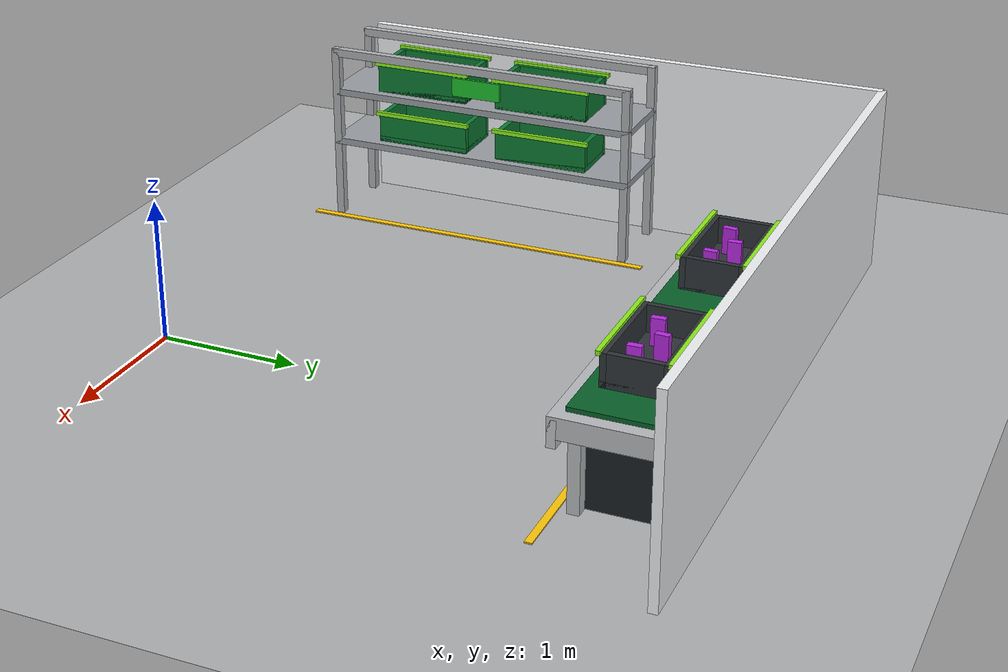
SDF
<?xml version="1.0" encoding="utf-8"?>
<sdf version="1.10">
  <world name="l_sorting_workcell">
    <gravity>0 0 -9.8</gravity>
    <physics name="100hz" type="ignored">
      <max_step_size>0.01</max_step_size>
      <real_time_factor>1</real_time_factor>
      <real_time_update_rate>100</real_time_update_rate>
    </physics>

    <plugin name="gz::sim::systems::Physics" filename="gz-sim-physics-system"/>
    <plugin name="gz::sim::systems::UserCommands" filename="gz-sim-user-commands-system"/>
    <plugin name="gz::sim::systems::SceneBroadcaster" filename="gz-sim-scene-broadcaster-system"/>
    <plugin name="gz::sim::systems::Contact" filename="gz-sim-contact-system"/>
    <plugin name="gz::sim::systems::Sensors" filename="gz-sim-sensors-system">
      <render_engine>ogre2</render_engine>
    </plugin>

    <scene>
      <ambient>0.55 0.55 0.55 1</ambient>
      <background>0.72 0.75 0.78 1</background>
      <shadows>true</shadows>
      <grid>false</grid>
    </scene>

    <gui>
      <camera name="user_camera">
        <pose>5.8 -4.8 5.2 0 0.50 2.34</pose>
      </camera>
    </gui>

    <light name="sun" type="directional">
      <pose>0 0 8 0 0 0</pose>
      <cast_shadows>true</cast_shadows>
      <intensity>1.1</intensity>
      <direction>-0.45 0.25 -0.86</direction>
      <diffuse>0.90 0.90 0.88 1</diffuse>
      <specular>0.20 0.20 0.20 1</specular>
    </light>
    <light name="workcell_fill_light" type="point">
      <pose>-0.5 1.5 5.0 0 0 0</pose>
      <cast_shadows>false</cast_shadows>
      <intensity>1.2</intensity>
      <diffuse>0.95 0.97 1.0 1</diffuse>
      <specular>0.15 0.15 0.15 1</specular>
      <attenuation><range>14</range><constant>0.7</constant><linear>0.03</linear><quadratic>0.01</quadratic></attenuation>
    </light>

    <model name="l_workcell_floor">
      <static>true</static>
      <link name="floor">
        <collision name="collision">
          <geometry><plane><normal>0 0 1</normal><size>14 14</size></plane></geometry>
          <surface><friction><ode><mu>1.0</mu><mu2>1.0</mu2></ode></friction></surface>
        </collision>
        <visual name="visual">
          <geometry><plane><normal>0 0 1</normal><size>14 14</size></plane></geometry>
          <material><ambient>0.52 0.53 0.54 1</ambient><diffuse>0.68 0.69 0.70 1</diffuse><specular>0.08 0.08 0.08 1</specular></material>
        </visual>
      </link>
    </model>

    <model name="l_workcell_partition_walls">
      <static>true</static>
      <link name="partitions">
        <collision name="left_wall_collision"><pose>-3.10 2.10 0.675 0 0 0</pose><geometry><box><size>0.06 4.00 1.35</size></box></geometry></collision>
        <visual name="left_wall_visual"><pose>-3.10 2.10 0.675 0 0 0</pose><geometry><box><size>0.06 4.00 1.35</size></box></geometry><material><ambient>0.82 0.83 0.84 1</ambient><diffuse>0.94 0.95 0.96 1</diffuse></material></visual>
        <collision name="rear_wall_collision"><pose>-0.70 4.10 0.675 0 0 0</pose><geometry><box><size>4.80 0.06 1.35</size></box></geometry></collision>
        <visual name="rear_wall_visual"><pose>-0.70 4.10 0.675 0 0 0</pose><geometry><box><size>4.80 0.06 1.35</size></box></geometry><material><ambient>0.82 0.83 0.84 1</ambient><diffuse>0.94 0.95 0.96 1</diffuse></material></visual>
      </link>
    </model>

    <model name="l_workcell_floor_markings">
      <static>true</static>
      <link name="markings">
        <visual name="rack_clearance"><pose>-2.34 1.25 0.006 0 0 0</pose><geometry><box><size>0.05 2.70 0.01</size></box></geometry><material><ambient>0.85 0.64 0.02 1</ambient><diffuse>1.0 0.78 0.03 1</diffuse></material></visual>
        <visual name="conveyor_clearance"><pose>-0.25 3.24 0.006 0 0 0</pose><geometry><box><size>3.20 0.05 0.01</size></box></geometry><material><ambient>0.85 0.64 0.02 1</ambient><diffuse>1.0 0.78 0.03 1</diffuse></material></visual>
      </link>
    </model>

    <include>
      <uri>model://l_workcell_rack</uri>
      <name>empty_basket_deck</name>
      <pose>-2.70 1.25 0 0 0 1.57079632679</pose>
    </include>

    <include><uri>model://l_workcell_empty_basket</uri><name>empty_basket_lower_1</name><pose>-2.68 0.77 0.625 0 0 1.57079632679</pose></include>
    <include><uri>model://l_workcell_empty_basket</uri><name>empty_basket_lower_2</name><pose>-2.68 1.73 0.625 0 0 1.57079632679</pose></include>
    <include><uri>model://l_workcell_empty_basket</uri><name>empty_basket_upper_1</name><pose>-2.68 0.77 1.025 0 0 1.57079632679</pose></include>
    <include><uri>model://l_workcell_empty_basket</uri><name>empty_basket_upper_2</name><pose>-2.68 1.73 1.025 0 0 1.57079632679</pose></include>

    <include>
      <uri>model://l_workcell_conveyor</uri>
      <name>filled_basket_conveyor</name>
      <pose>-0.25 3.65 0 0 0 0</pose>
    </include>

    <include><uri>model://l_workcell_filled_basket</uri><name>filled_basket_1</name><pose>-0.95 3.65 0.77 0 0 0</pose></include>
    <include><uri>model://l_workcell_filled_basket</uri><name>filled_basket_2</name><pose>0.45 3.65 0.77 0 0 0</pose></include>

    <include><uri>model://l_workcell_item</uri><name>sorting_item_1</name><pose>-1.14 3.60 0.90 0 0 -0.08</pose></include>
    <include><uri>model://l_workcell_item</uri><name>sorting_item_2</name><pose>-0.95 3.69 0.90 0 0 0.06</pose></include>
    <include><uri>model://l_workcell_item</uri><name>sorting_item_3</name><pose>-0.76 3.59 0.90 0 0 -0.04</pose></include>
    <include><uri>model://l_workcell_item</uri><name>sorting_item_4</name><pose>0.26 3.60 0.90 0 0 0.07</pose></include>
    <include><uri>model://l_workcell_item</uri><name>sorting_item_5</name><pose>0.45 3.69 0.90 0 0 -0.05</pose></include>
    <include><uri>model://l_workcell_item</uri><name>sorting_item_6</name><pose>0.64 3.59 0.90 0 0 0.03</pose></include>
  </world>
</sdf>

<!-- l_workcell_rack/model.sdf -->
<sdf version="1.10">
  <model name="l_workcell_rack">
    <static>true</static>
    <link name="rack">
      <collision name="lower_deck_collision"><pose>0 0 0.60 0 0 0</pose><geometry><box><size>2.40 0.60 0.05</size></box></geometry></collision>
      <visual name="lower_deck_visual"><pose>0 0 0.60 0 0 0</pose><geometry><box><size>2.40 0.60 0.05</size></box></geometry><material><ambient>0.32 0.34 0.36 1</ambient><diffuse>0.60 0.62 0.64 1</diffuse><specular>0.35 0.35 0.35 1</specular></material></visual>

      <collision name="upper_deck_collision"><pose>0 0 1.00 0 0 0</pose><geometry><box><size>2.40 0.60 0.05</size></box></geometry></collision>
      <visual name="upper_deck_visual"><pose>0 0 1.00 0 0 0</pose><geometry><box><size>2.40 0.60 0.05</size></box></geometry><material><ambient>0.32 0.34 0.36 1</ambient><diffuse>0.60 0.62 0.64 1</diffuse><specular>0.35 0.35 0.35 1</specular></material></visual>

      <collision name="post_fl_collision"><pose>-1.17 -0.27 0.67 0 0 0</pose><geometry><box><size>0.06 0.06 1.34</size></box></geometry></collision>
      <visual name="post_fl_visual"><pose>-1.17 -0.27 0.67 0 0 0</pose><geometry><box><size>0.06 0.06 1.34</size></box></geometry><material><ambient>0.36 0.37 0.38 1</ambient><diffuse>0.68 0.69 0.70 1</diffuse></material></visual>
      <collision name="post_fr_collision"><pose>1.17 -0.27 0.67 0 0 0</pose><geometry><box><size>0.06 0.06 1.34</size></box></geometry></collision>
      <visual name="post_fr_visual"><pose>1.17 -0.27 0.67 0 0 0</pose><geometry><box><size>0.06 0.06 1.34</size></box></geometry><material><ambient>0.36 0.37 0.38 1</ambient><diffuse>0.68 0.69 0.70 1</diffuse></material></visual>
      <collision name="post_rl_collision"><pose>-1.17 0.27 0.67 0 0 0</pose><geometry><box><size>0.06 0.06 1.34</size></box></geometry></collision>
      <visual name="post_rl_visual"><pose>-1.17 0.27 0.67 0 0 0</pose><geometry><box><size>0.06 0.06 1.34</size></box></geometry><material><ambient>0.36 0.37 0.38 1</ambient><diffuse>0.68 0.69 0.70 1</diffuse></material></visual>
      <collision name="post_rr_collision"><pose>1.17 0.27 0.67 0 0 0</pose><geometry><box><size>0.06 0.06 1.34</size></box></geometry></collision>
      <visual name="post_rr_visual"><pose>1.17 0.27 0.67 0 0 0</pose><geometry><box><size>0.06 0.06 1.34</size></box></geometry><material><ambient>0.36 0.37 0.38 1</ambient><diffuse>0.68 0.69 0.70 1</diffuse></material></visual>

      <collision name="top_front_collision"><pose>0 -0.27 1.31 0 0 0</pose><geometry><box><size>2.40 0.06 0.06</size></box></geometry></collision>
      <visual name="top_front_visual"><pose>0 -0.27 1.31 0 0 0</pose><geometry><box><size>2.40 0.06 0.06</size></box></geometry><material><ambient>0.36 0.37 0.38 1</ambient><diffuse>0.68 0.69 0.70 1</diffuse></material></visual>
      <collision name="top_rear_collision"><pose>0 0.27 1.31 0 0 0</pose><geometry><box><size>2.40 0.06 0.06</size></box></geometry></collision>
      <visual name="top_rear_visual"><pose>0 0.27 1.31 0 0 0</pose><geometry><box><size>2.40 0.06 0.06</size></box></geometry><material><ambient>0.36 0.37 0.38 1</ambient><diffuse>0.68 0.69 0.70 1</diffuse></material></visual>

      <visual name="station_marker"><pose>0 -0.305 1.18 0 0 0</pose><geometry><box><size>0.38 0.02 0.14</size></box></geometry><material><ambient>0.08 0.48 0.12 1</ambient><diffuse>0.12 0.74 0.18 1</diffuse></material></visual>
    </link>
  </model>
</sdf>

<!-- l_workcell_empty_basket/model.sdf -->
<sdf version="1.10">
  <model name="l_workcell_empty_basket">
    <static>true</static>
    <link name="basket">
      <collision name="bottom_collision">
        <pose>0 0 0.02 0 0 0</pose>
        <geometry><box><size>0.72 0.42 0.04</size></box></geometry>
      </collision>
      <visual name="bottom_visual">
        <pose>0 0 0.02 0 0 0</pose>
        <geometry><box><size>0.72 0.42 0.04</size></box></geometry>
        <material><ambient>0.03 0.28 0.12 1</ambient><diffuse>0.05 0.48 0.20 1</diffuse></material>
      </visual>

      <collision name="front_wall_collision">
        <pose>0 -0.19 0.11 0 0 0</pose>
        <geometry><box><size>0.72 0.04 0.22</size></box></geometry>
      </collision>
      <visual name="front_wall_visual">
        <pose>0 -0.19 0.11 0 0 0</pose>
        <geometry><box><size>0.72 0.04 0.22</size></box></geometry>
        <material><ambient>0.03 0.28 0.12 1</ambient><diffuse>0.05 0.48 0.20 1</diffuse></material>
      </visual>

      <collision name="rear_wall_collision">
        <pose>0 0.19 0.11 0 0 0</pose>
        <geometry><box><size>0.72 0.04 0.22</size></box></geometry>
      </collision>
      <visual name="rear_wall_visual">
        <pose>0 0.19 0.11 0 0 0</pose>
        <geometry><box><size>0.72 0.04 0.22</size></box></geometry>
        <material><ambient>0.03 0.28 0.12 1</ambient><diffuse>0.05 0.48 0.20 1</diffuse></material>
      </visual>

      <collision name="left_wall_collision">
        <pose>-0.34 0 0.11 0 0 0</pose>
        <geometry><box><size>0.04 0.34 0.22</size></box></geometry>
      </collision>
      <visual name="left_wall_visual">
        <pose>-0.34 0 0.11 0 0 0</pose>
        <geometry><box><size>0.04 0.34 0.22</size></box></geometry>
        <material><ambient>0.03 0.28 0.12 1</ambient><diffuse>0.05 0.48 0.20 1</diffuse></material>
      </visual>

      <collision name="right_wall_collision">
        <pose>0.34 0 0.11 0 0 0</pose>
        <geometry><box><size>0.04 0.34 0.22</size></box></geometry>
      </collision>
      <visual name="right_wall_visual">
        <pose>0.34 0 0.11 0 0 0</pose>
        <geometry><box><size>0.04 0.34 0.22</size></box></geometry>
        <material><ambient>0.03 0.28 0.12 1</ambient><diffuse>0.05 0.48 0.20 1</diffuse></material>
      </visual>

      <visual name="front_rim_visual">
        <pose>0 -0.215 0.225 0 0 0</pose>
        <geometry><box><size>0.76 0.03 0.03</size></box></geometry>
        <material><ambient>0.35 0.75 0.08 1</ambient><diffuse>0.55 0.95 0.12 1</diffuse></material>
      </visual>
      <visual name="rear_rim_visual">
        <pose>0 0.215 0.225 0 0 0</pose>
        <geometry><box><size>0.76 0.03 0.03</size></box></geometry>
        <material><ambient>0.35 0.75 0.08 1</ambient><diffuse>0.55 0.95 0.12 1</diffuse></material>
      </visual>
    </link>
  </model>
</sdf>

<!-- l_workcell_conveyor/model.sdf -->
<sdf version="1.10">
  <model name="l_workcell_conveyor">
    <static>true</static>
    <link name="conveyor">
      <collision name="belt_collision"><pose>0 0 0.70 0 0 0</pose><geometry><box><size>2.80 0.72 0.08</size></box></geometry></collision>
      <visual name="belt_visual"><pose>0 0 0.755 0 0 0</pose><geometry><box><size>2.68 0.60 0.03</size></box></geometry><material><ambient>0.02 0.18 0.08 1</ambient><diffuse>0.03 0.38 0.16 1</diffuse><specular>0.08 0.08 0.08 1</specular></material></visual>
      <visual name="frame_visual"><pose>0 0 0.67 0 0 0</pose><geometry><box><size>2.86 0.76 0.14</size></box></geometry><material><ambient>0.42 0.43 0.44 1</ambient><diffuse>0.72 0.73 0.74 1</diffuse><specular>0.35 0.35 0.35 1</specular></material></visual>

      <collision name="front_beam_collision"><pose>0 -0.35 0.63 0 0 0</pose><geometry><box><size>2.86 0.06 0.18</size></box></geometry></collision>
      <visual name="front_beam_visual"><pose>0 -0.35 0.63 0 0 0</pose><geometry><box><size>2.86 0.06 0.18</size></box></geometry><material><ambient>0.48 0.49 0.50 1</ambient><diffuse>0.76 0.77 0.78 1</diffuse></material></visual>
      <collision name="rear_beam_collision"><pose>0 0.35 0.63 0 0 0</pose><geometry><box><size>2.86 0.06 0.18</size></box></geometry></collision>
      <visual name="rear_beam_visual"><pose>0 0.35 0.63 0 0 0</pose><geometry><box><size>2.86 0.06 0.18</size></box></geometry><material><ambient>0.48 0.49 0.50 1</ambient><diffuse>0.76 0.77 0.78 1</diffuse></material></visual>

      <collision name="leg_1_collision"><pose>-1.18 -0.29 0.30 0 0 0</pose><geometry><box><size>0.08 0.08 0.60</size></box></geometry></collision>
      <visual name="leg_1_visual"><pose>-1.18 -0.29 0.30 0 0 0</pose><geometry><box><size>0.08 0.08 0.60</size></box></geometry><material><ambient>0.42 0.43 0.44 1</ambient><diffuse>0.72 0.73 0.74 1</diffuse></material></visual>
      <collision name="leg_2_collision"><pose>-1.18 0.29 0.30 0 0 0</pose><geometry><box><size>0.08 0.08 0.60</size></box></geometry></collision>
      <visual name="leg_2_visual"><pose>-1.18 0.29 0.30 0 0 0</pose><geometry><box><size>0.08 0.08 0.60</size></box></geometry><material><ambient>0.42 0.43 0.44 1</ambient><diffuse>0.72 0.73 0.74 1</diffuse></material></visual>
      <collision name="leg_3_collision"><pose>1.18 -0.29 0.30 0 0 0</pose><geometry><box><size>0.08 0.08 0.60</size></box></geometry></collision>
      <visual name="leg_3_visual"><pose>1.18 -0.29 0.30 0 0 0</pose><geometry><box><size>0.08 0.08 0.60</size></box></geometry><material><ambient>0.42 0.43 0.44 1</ambient><diffuse>0.72 0.73 0.74 1</diffuse></material></visual>
      <collision name="leg_4_collision"><pose>1.18 0.29 0.30 0 0 0</pose><geometry><box><size>0.08 0.08 0.60</size></box></geometry></collision>
      <visual name="leg_4_visual"><pose>1.18 0.29 0.30 0 0 0</pose><geometry><box><size>0.08 0.08 0.60</size></box></geometry><material><ambient>0.42 0.43 0.44 1</ambient><diffuse>0.72 0.73 0.74 1</diffuse></material></visual>

      <collision name="crate_1_collision"><pose>-0.92 0 0.25 0 0 0</pose><geometry><box><size>0.42 0.54 0.50</size></box></geometry></collision>
      <visual name="crate_1_visual"><pose>-0.92 0 0.25 0 0 0</pose><geometry><box><size>0.42 0.54 0.50</size></box></geometry><material><ambient>0.04 0.05 0.06 1</ambient><diffuse>0.10 0.12 0.14 1</diffuse></material></visual>
      <collision name="crate_2_collision"><pose>-0.31 0 0.25 0 0 0</pose><geometry><box><size>0.42 0.54 0.50</size></box></geometry></collision>
      <visual name="crate_2_visual"><pose>-0.31 0 0.25 0 0 0</pose><geometry><box><size>0.42 0.54 0.50</size></box></geometry><material><ambient>0.04 0.05 0.06 1</ambient><diffuse>0.10 0.12 0.14 1</diffuse></material></visual>
      <collision name="crate_3_collision"><pose>0.31 0 0.25 0 0 0</pose><geometry><box><size>0.42 0.54 0.50</size></box></geometry></collision>
      <visual name="crate_3_visual"><pose>0.31 0 0.25 0 0 0</pose><geometry><box><size>0.42 0.54 0.50</size></box></geometry><material><ambient>0.04 0.05 0.06 1</ambient><diffuse>0.10 0.12 0.14 1</diffuse></material></visual>
      <collision name="crate_4_collision"><pose>0.92 0 0.25 0 0 0</pose><geometry><box><size>0.42 0.54 0.50</size></box></geometry></collision>
      <visual name="crate_4_visual"><pose>0.92 0 0.25 0 0 0</pose><geometry><box><size>0.42 0.54 0.50</size></box></geometry><material><ambient>0.04 0.05 0.06 1</ambient><diffuse>0.10 0.12 0.14 1</diffuse></material></visual>
    </link>
  </model>
</sdf>

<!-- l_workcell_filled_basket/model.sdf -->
<sdf version="1.10">
  <model name="l_workcell_filled_basket">
    <static>true</static>
    <link name="basket_and_goods">
      <collision name="bottom_collision">
        <pose>0 0 0.02 0 0 0</pose>
        <geometry><box><size>0.72 0.42 0.04</size></box></geometry>
      </collision>
      <visual name="bottom_visual">
        <pose>0 0 0.02 0 0 0</pose>
        <geometry><box><size>0.72 0.42 0.04</size></box></geometry>
        <material><ambient>0.08 0.09 0.10 1</ambient><diffuse>0.18 0.20 0.22 1</diffuse></material>
      </visual>

      <collision name="front_wall_collision">
        <pose>0 -0.19 0.11 0 0 0</pose>
        <geometry><box><size>0.72 0.04 0.22</size></box></geometry>
      </collision>
      <visual name="front_wall_visual">
        <pose>0 -0.19 0.11 0 0 0</pose>
        <geometry><box><size>0.72 0.04 0.22</size></box></geometry>
        <material><ambient>0.08 0.09 0.10 1</ambient><diffuse>0.18 0.20 0.22 1</diffuse></material>
      </visual>
      <collision name="rear_wall_collision">
        <pose>0 0.19 0.11 0 0 0</pose>
        <geometry><box><size>0.72 0.04 0.22</size></box></geometry>
      </collision>
      <visual name="rear_wall_visual">
        <pose>0 0.19 0.11 0 0 0</pose>
        <geometry><box><size>0.72 0.04 0.22</size></box></geometry>
        <material><ambient>0.08 0.09 0.10 1</ambient><diffuse>0.18 0.20 0.22 1</diffuse></material>
      </visual>
      <collision name="left_wall_collision">
        <pose>-0.34 0 0.11 0 0 0</pose>
        <geometry><box><size>0.04 0.34 0.22</size></box></geometry>
      </collision>
      <visual name="left_wall_visual">
        <pose>-0.34 0 0.11 0 0 0</pose>
        <geometry><box><size>0.04 0.34 0.22</size></box></geometry>
        <material><ambient>0.08 0.09 0.10 1</ambient><diffuse>0.18 0.20 0.22 1</diffuse></material>
      </visual>
      <collision name="right_wall_collision">
        <pose>0.34 0 0.11 0 0 0</pose>
        <geometry><box><size>0.04 0.34 0.22</size></box></geometry>
      </collision>
      <visual name="right_wall_visual">
        <pose>0.34 0 0.11 0 0 0</pose>
        <geometry><box><size>0.04 0.34 0.22</size></box></geometry>
        <material><ambient>0.08 0.09 0.10 1</ambient><diffuse>0.18 0.20 0.22 1</diffuse></material>
      </visual>

      <visual name="rim_front_visual">
        <pose>0 -0.215 0.225 0 0 0</pose>
        <geometry><box><size>0.76 0.03 0.03</size></box></geometry>
        <material><ambient>0.30 0.65 0.05 1</ambient><diffuse>0.55 0.92 0.10 1</diffuse></material>
      </visual>
      <visual name="rim_rear_visual">
        <pose>0 0.215 0.225 0 0 0</pose>
        <geometry><box><size>0.76 0.03 0.03</size></box></geometry>
        <material><ambient>0.30 0.65 0.05 1</ambient><diffuse>0.55 0.92 0.10 1</diffuse></material>
      </visual>

    </link>
  </model>
</sdf>

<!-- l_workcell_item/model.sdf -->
<sdf version="1.10">
  <model name="l_workcell_item">
    <static>false</static>
    <allow_auto_disable>false</allow_auto_disable>
    <link name="package">
      <inertial>
        <mass>0.08</mass>
        <inertia>
          <ixx>0.0002767</ixx><iyy>0.0002295</iyy><izz>0.0000675</izz>
          <ixy>0</ixy><ixz>0</ixz><iyz>0</iyz>
        </inertia>
      </inertial>
      <collision name="collision">
        <geometry><box><size>0.045 0.09 0.18</size></box></geometry>
        <surface>
          <friction><ode><mu>1.1</mu><mu2>1.1</mu2></ode></friction>
          <bounce><restitution_coefficient>0.0</restitution_coefficient><threshold>1000</threshold></bounce>
          <contact><ode><kp>200000</kp><kd>40</kd><max_vel>0.02</max_vel><min_depth>0.001</min_depth></ode></contact>
        </surface>
      </collision>
      <visual name="visual">
        <geometry><box><size>0.045 0.09 0.18</size></box></geometry>
        <material><ambient>0.45 0.08 0.58 1</ambient><diffuse>0.72 0.16 0.88 1</diffuse><specular>0.08 0.08 0.08 1</specular></material>
      </visual>
    </link>
  </model>
</sdf>
